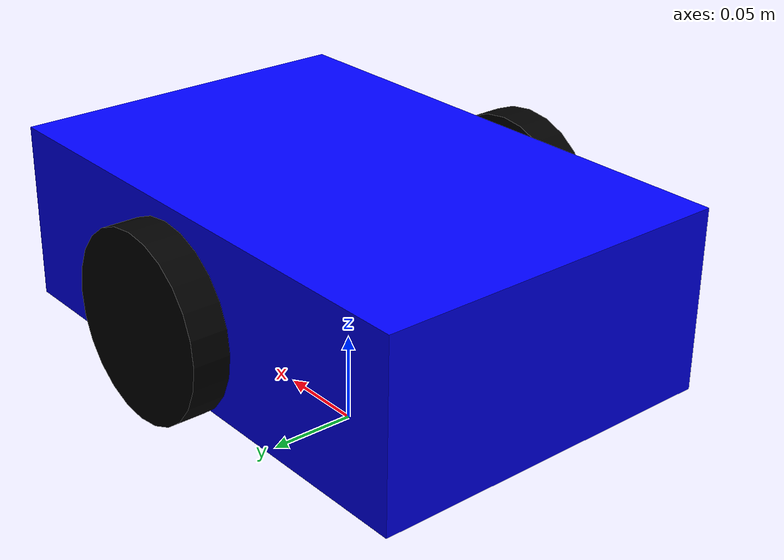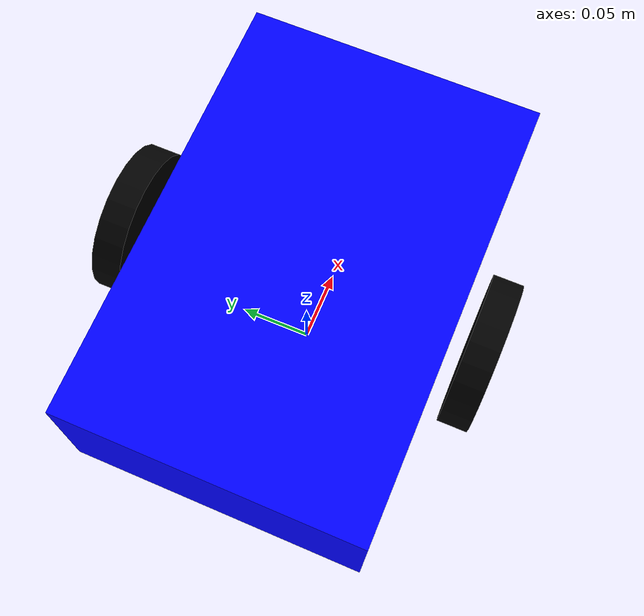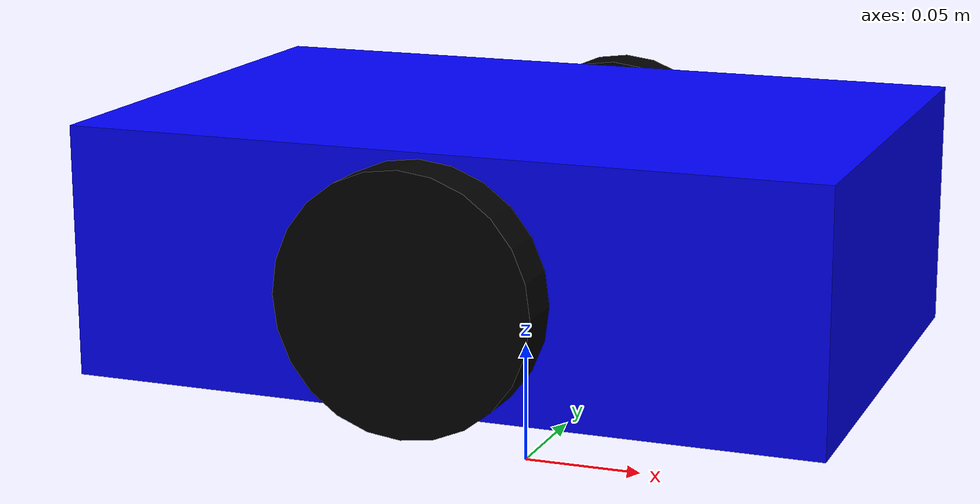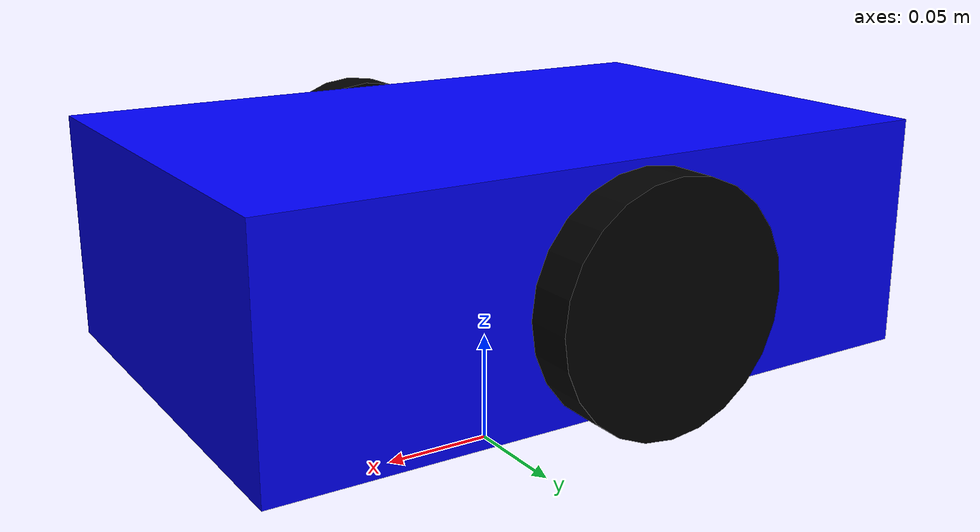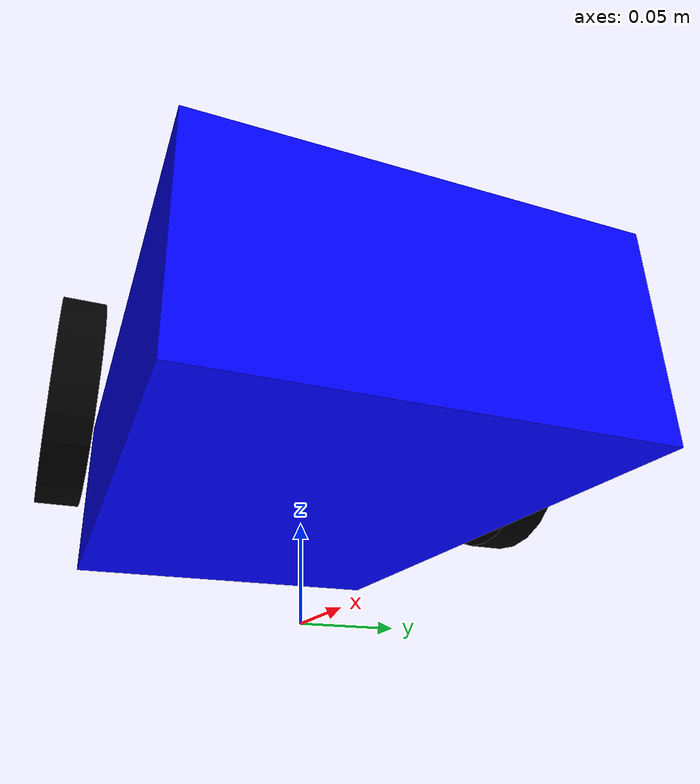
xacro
<?xml version="1.0"?>
<robot name="simple_robot" xmlns:xacro="http://www.ros.org/wiki/xacro">

  <!-- Properties -->
  <xacro:property name="wheel_radius" value="0.05" />
  <xacro:property name="wheel_width" value="0.02" />
  <xacro:property name="wheel_separation" value="0.24" />

  <!-- Base footprint -->
  <link name="base_footprint"/>

  <!-- Base joint -->
  <joint name="base_joint" type="fixed">
    <origin xyz="0 0 0.1" rpy="0 0 0"/>
    <parent link="base_footprint"/>
    <child link="base_link"/>
  </joint>

  <!-- Base link -->
  <link name="base_link">
    <visual>
      <geometry>
        <box size="0.3 0.2 0.1"/>
      </geometry>
      <material name="blue">
        <color rgba="0 0 1 1"/>
      </material>
    </visual>
    <collision>
      <geometry>
        <box size="0.3 0.2 0.1"/>
      </geometry>
    </collision>
    <inertial>
      <mass value="1.0"/>
      <inertia ixx="0.01" ixy="0.0" ixz="0.0" iyy="0.01" iyz="0.0" izz="0.01"/>
    </inertial>
  </link>

  <!-- Wheel macro -->
  <xacro:macro name="wheel" params="prefix y_offset">
    <joint name="${prefix}_wheel_joint" type="continuous">
      <parent link="base_link"/>
      <child link="${prefix}_wheel"/>
      <origin xyz="0 ${y_offset} 0" rpy="1.5708 0 0"/>
      <axis xyz="0 0 1"/>
    </joint>

    <link name="${prefix}_wheel">
      <visual>
        <geometry>
          <cylinder radius="${wheel_radius}" length="${wheel_width}"/>
        </geometry>
        <material name="black">
          <color rgba="0 0 0 1"/>
        </material>
      </visual>
      <collision>
        <geometry>
          <cylinder radius="${wheel_radius}" length="${wheel_width}"/>
        </geometry>
      </collision>
      <inertial>
        <mass value="0.1"/>
        <inertia ixx="0.001" ixy="0.0" ixz="0.0" iyy="0.001" iyz="0.0" izz="0.001"/>
      </inertial>
    </link>
  </xacro:macro>

  <!-- Instantiate wheels -->
  <xacro:wheel prefix="left" y_offset="${wheel_separation/2}"/>
  <xacro:wheel prefix="right" y_offset="${-wheel_separation/2}"/>

  <!-- ROS 2 control interfaces -->
  <ros2_control name="simple_robot_system" type="system">
    <hardware>
      <plugin>gz_ros2_control/GazeboSimSystem</plugin>
    </hardware>
    <joint name="left_wheel_joint">
      <command_interface name="velocity"/>
      <state_interface name="position"/>
      <state_interface name="velocity"/>
    </joint>
    <joint name="right_wheel_joint">
      <command_interface name="velocity"/>
      <state_interface name="position"/>
      <state_interface name="velocity"/>
    </joint>
  </ros2_control>

  <!-- Gazebo plugins for ROS 2 -->
  <gazebo>
    <plugin name="gz_ros2_control" filename="libgz_ros2_control-system.so">
      <parameters>/home/user/my_robot/config/simple_robot_controllers.yaml</parameters>
    </plugin>
  </gazebo>

</robot>
